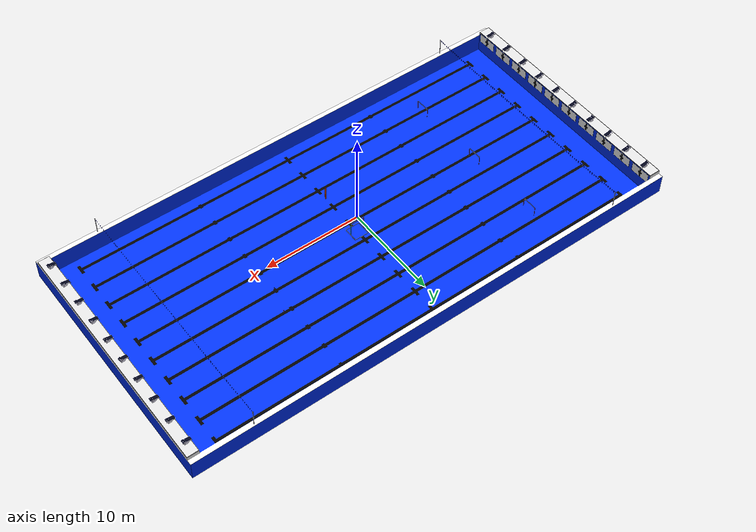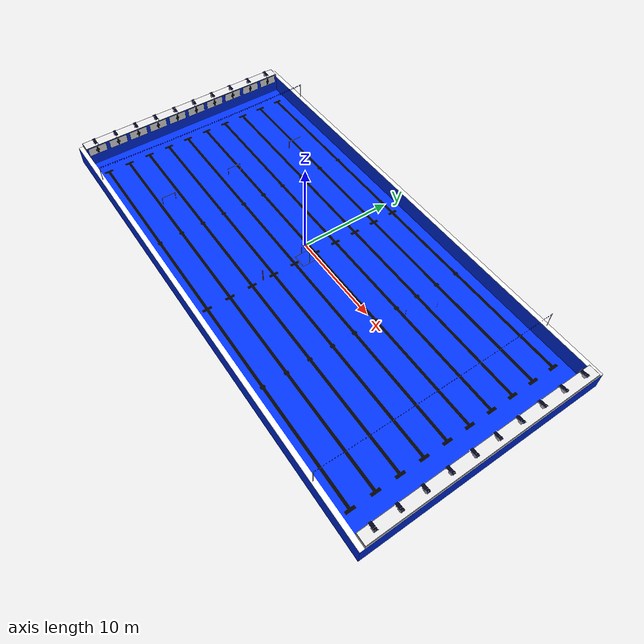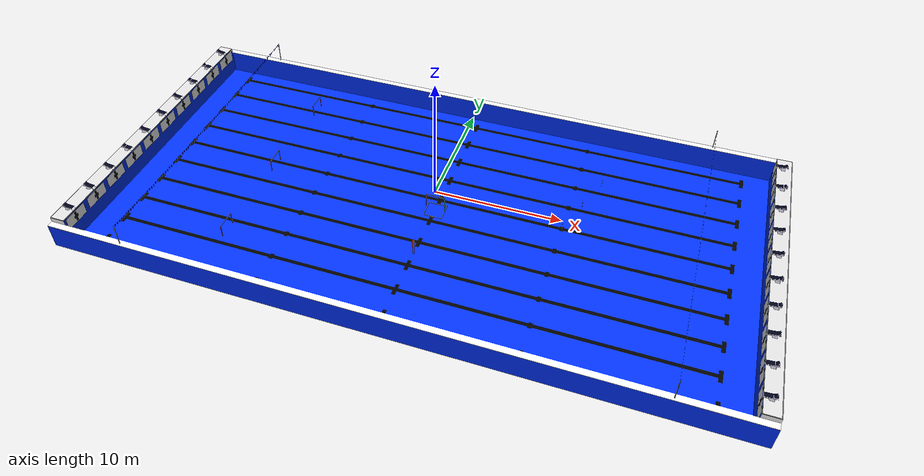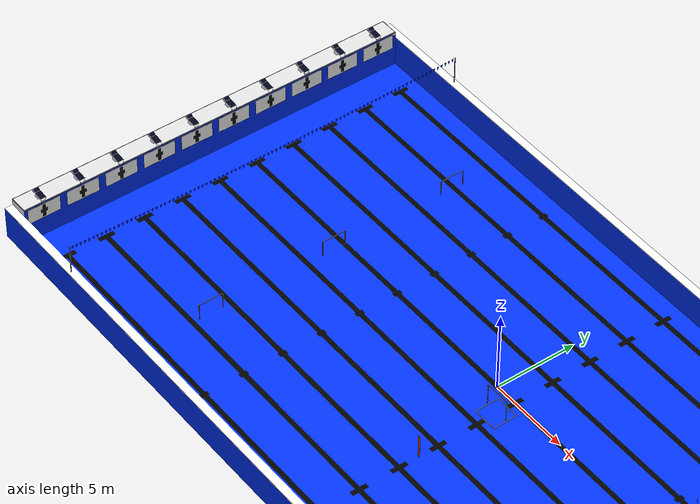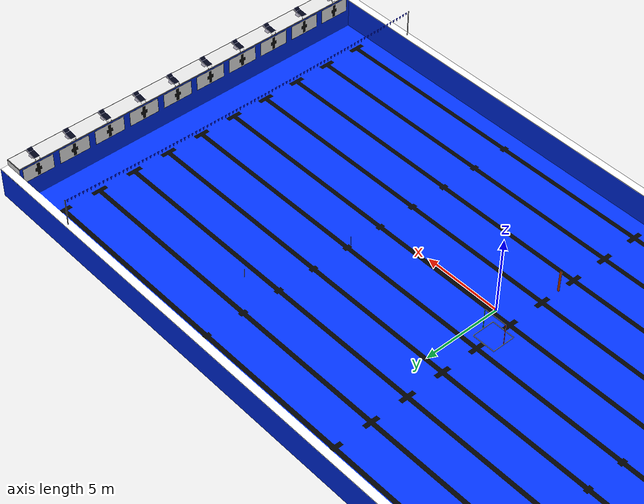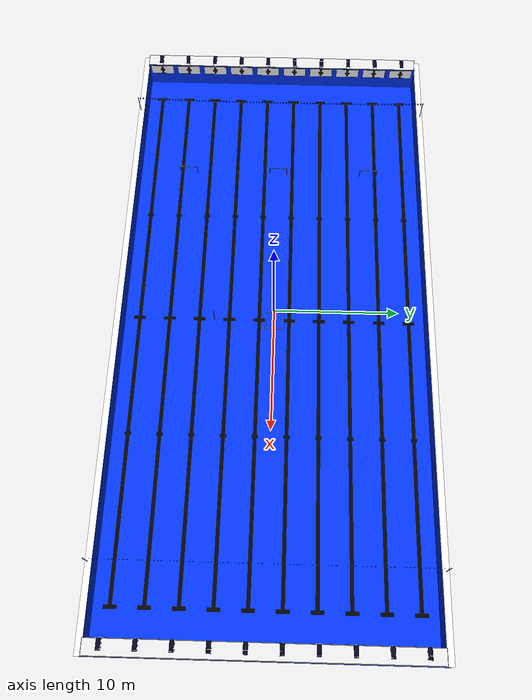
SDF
<sdf version="1.6">
 <world name="sand">
  <plugin filename="gz-sim-physics-system" name="gz::sim::systems::Physics"/>
  <plugin filename="gz-sim-user-commands-system" name="gz::sim::systems::UserCommands"/>
  <plugin filename="gz-sim-scene-broadcaster-system" name="gz::sim::systems::SceneBroadcaster"/>
  <plugin filename="gz-sim-sensors-system" name="gz::sim::systems::Sensors"/>
  <plugin filename="libgz-sim-imu-system.so" name="gz::sim::systems::Imu"/>
  <plugin filename="gz-sim-buoyancy-system" name="gz::sim::systems::Buoyancy">
   <graded_buoyancy>
    <default_density>1000</default_density>
    <density_change><above_depth>0</above_depth><density>1</density></density_change>
   </graded_buoyancy>
   <enable>orca4</enable>
  </plugin>
  <scene><grid>false</grid><ambient>1.0 1.0 1.0</ambient><background>0.8 0.8 0.8</background></scene>
  <light type="directional" name="sun">
   <cast_shadows>false</cast_shadows>
   <pose>0 0 10 0 0 0</pose>
   <diffuse>1 1 1 1</diffuse>
   <specular>0.1 0.1 0.1 1</specular>
   <attenuation>
    <range>100</range>
    <constant>0.9</constant>
    <linear>0.01</linear>
    <quadratic>0.001</quadratic>
   </attenuation>
   <direction>-0.5 0.5 -1</direction>
  </light>
  <include><uri>model://swimming_pool</uri><pose>0 0 -3.3 0 0 0</pose></include>
  <include><uri>model://orange_gate_0</uri><pose>-14 8 -1.2 0 0 1.57079632679</pose></include>
  <include><uri>model://orange_gate_1</uri><pose>-14 0 -1.2 0 0 1.57079632679</pose></include>
  <include><uri>model://orange_gate_2</uri><pose>-14 -8 -1.2 0 0 1.57079632679</pose></include>
  <include><uri>model://red_green_gate</uri><pose>0 0 -2.0 0 0 0</pose></include>
  <include><uri>model://orange_flare</uri><pose>0 -5 -2.0 0 0 1.57</pose></include>
  <include><uri>model://blue_flare</uri><pose>10 1 -2 0 0 0</pose></include>
  <include><uri>model://red_flare</uri><pose>11 4 -2 0 0 0</pose></include>
  <include><uri>model://yellow_flare</uri><pose>12 7 -2 0 0 0</pose></include>
 </world>
</sdf>

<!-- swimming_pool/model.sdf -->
<sdf version="1.6">
    <model name="swimming_pool">
        <static>true</static>
  <link name="pool">
      <visual name="visual">
                <geometry>
                    <mesh>
          <uri>model://swimming_pool/meshes/2mm.dae</uri>
                    </mesh>
                </geometry>
            </visual>
    <collision name="pool_collision">
      <geometry>
        <mesh>
          <uri>model://swimming_pool/meshes/2mm.dae</uri>
          <scale>1 1 1</scale>
        </mesh>
      </geometry>
      <surface>
        <contact>
          <collide_without_contact>false</collide_without_contact>
          <collide_bitmask>0x01</collide_bitmask>
        </contact>
      </surface>
    </collision>
  </link>
    </model>
</sdf>

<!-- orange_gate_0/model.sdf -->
<sdf version="1.6">
    <model name="orange_gate_0">
        <static>true</static>
  <link name="pool">
      <visual name="visual">
                <geometry>
                    <mesh>
          <uri>model://orange_gate_0/meshes/orange_gate.dae</uri>
                    </mesh>
                </geometry>
            </visual>
    <collision name="pool_collision">
      <geometry>
        <mesh>
          <uri>model://orange_gate_0/meshes/orange_gate.dae</uri>
          <scale>1 1 1</scale>
        </mesh>
      </geometry>
      <surface>
        <contact>
          <collide_without_contact>false</collide_without_contact>
          <collide_bitmask>0x01</collide_bitmask>
        </contact>
      </surface>
    </collision>
  </link>
    </model>
</sdf>

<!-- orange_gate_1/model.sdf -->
<sdf version="1.6">
    <model name="orange_gate_1">
        <static>true</static>
  <link name="pool">
      <visual name="visual">
                <geometry>
                    <mesh>
          <uri>model://orange_gate_1/meshes/orange_gate.dae</uri>
                    </mesh>
                </geometry>
            </visual>
    <collision name="pool_collision">
      <geometry>
        <mesh>
          <uri>model://orange_gate_1/meshes/orange_gate.dae</uri>
          <scale>1 1 1</scale>
        </mesh>
      </geometry>
      <surface>
        <contact>
          <collide_without_contact>false</collide_without_contact>
          <collide_bitmask>0x01</collide_bitmask>
        </contact>
      </surface>
    </collision>
  </link>
    </model>
</sdf>

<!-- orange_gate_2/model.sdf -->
<sdf version="1.6">
    <model name="orange_gate_2">
        <static>true</static>
  <link name="pool">
      <visual name="visual">
                <geometry>
                    <mesh>
          <uri>model://orange_gate_2/meshes/orange_gate.dae</uri>
                    </mesh>
                </geometry>
            </visual>
    <collision name="pool_collision">
      <geometry>
        <mesh>
          <uri>model://orange_gate_2/meshes/orange_gate.dae</uri>
          <scale>1 1 1</scale>
        </mesh>
      </geometry>
      <surface>
        <contact>
          <collide_without_contact>false</collide_without_contact>
          <collide_bitmask>0x01</collide_bitmask>
        </contact>
      </surface>
    </collision>
  </link>
    </model>
</sdf>

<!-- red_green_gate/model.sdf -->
<sdf version="1.6">
    <model name="red_green_gate">
        <static>true</static>
  <link name="pool">
      <visual name="visual">
                <geometry>
                    <mesh>
          <uri>model://red_green_gate/meshes/red_green_gate.dae</uri>
                    </mesh>
                </geometry>
            </visual>
    <collision name="pool_collision">
      <geometry>
        <mesh>
          <uri>model://red_green_gate/meshes/red_green_gate.dae</uri>
          <scale>1 1 1</scale>
        </mesh>
      </geometry>
      <surface>
        <contact>
          <collide_without_contact>false</collide_without_contact>
          <collide_bitmask>0x01</collide_bitmask>
        </contact>
      </surface>
    </collision>
  </link>
    </model>
</sdf>

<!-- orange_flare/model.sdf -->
<sdf version="1.6">
    <model name="orange_flare">
        <static>true</static>
  <link name="pool">
      <visual name="visual">
                <geometry>
                    <mesh>
          <uri>model://orange_flare/meshes/orange_flare.dae</uri>
                    </mesh>
                </geometry>
            </visual>
    <collision name="pool_collision">
      <geometry>
        <mesh>
          <uri>model://orange_flare/meshes/orange_flare.dae</uri>
          <scale>1 1 1</scale>
        </mesh>
      </geometry>
      <surface>
        <contact>
          <collide_without_contact>false</collide_without_contact>
          <collide_bitmask>0x01</collide_bitmask>
        </contact>
      </surface>
    </collision>
  </link>
    </model>
</sdf>

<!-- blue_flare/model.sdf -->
<sdf version="1.6">
    <model name="blue_flare">
        <static>true</static>
  <link name="pool">
      <visual name="visual">
                <geometry>
                    <mesh>
          <uri>model://blue_flare/meshes/blue_flare.dae</uri>
                    </mesh>
                </geometry>
            </visual>
    <collision name="pool_collision">
      <geometry>
        <mesh>
          <uri>model://blue_flare/meshes/blue_flare.dae</uri>
          <scale>1 1 1</scale>
        </mesh>
      </geometry>
      <surface>
        <contact>
          <collide_without_contact>false</collide_without_contact>
          <collide_bitmask>0x01</collide_bitmask>
        </contact>
      </surface>
    </collision>
  </link>
    </model>
</sdf>

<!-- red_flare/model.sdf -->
<sdf version="1.6">
    <model name="red_flare">
        <static>true</static>
  <link name="pool">
      <visual name="visual">
                <geometry>
                    <mesh>
          <uri>model://red_flare/meshes/red_flare.dae</uri>
                    </mesh>
                </geometry>
            </visual>
    <collision name="pool_collision">
      <geometry>
        <mesh>
          <uri>model://red_flare/meshes/red_flare.dae</uri>
          <scale>1 1 1</scale>
        </mesh>
      </geometry>
      <surface>
        <contact>
          <collide_without_contact>false</collide_without_contact>
          <collide_bitmask>0x01</collide_bitmask>
        </contact>
      </surface>
    </collision>
  </link>
    </model>
</sdf>

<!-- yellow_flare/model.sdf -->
<sdf version="1.6">
    <model name="yellow_flare">
        <static>true</static>
  <link name="pool">
      <visual name="visual">
                <geometry>
                    <mesh>
          <uri>model://yellow_flare/meshes/yellow_flare.dae</uri>
                    </mesh>
                </geometry>
            </visual>
    <collision name="pool_collision">
      <geometry>
        <mesh>
          <uri>model://yellow_flare/meshes/yellow_flare.dae</uri>
          <scale>1 1 1</scale>
        </mesh>
      </geometry>
      <surface>
        <contact>
          <collide_without_contact>false</collide_without_contact>
          <collide_bitmask>0x01</collide_bitmask>
        </contact>
      </surface>
    </collision>
  </link>
    </model>
</sdf>
